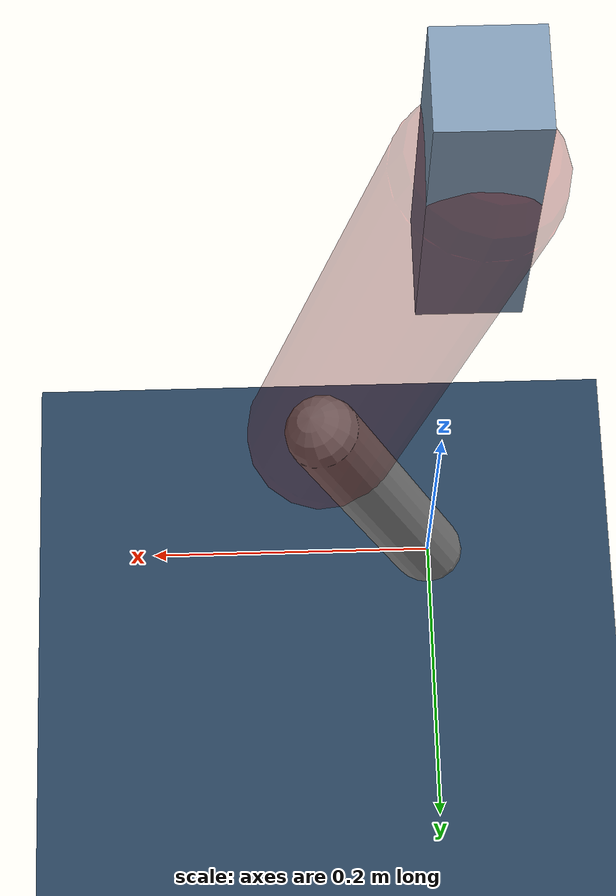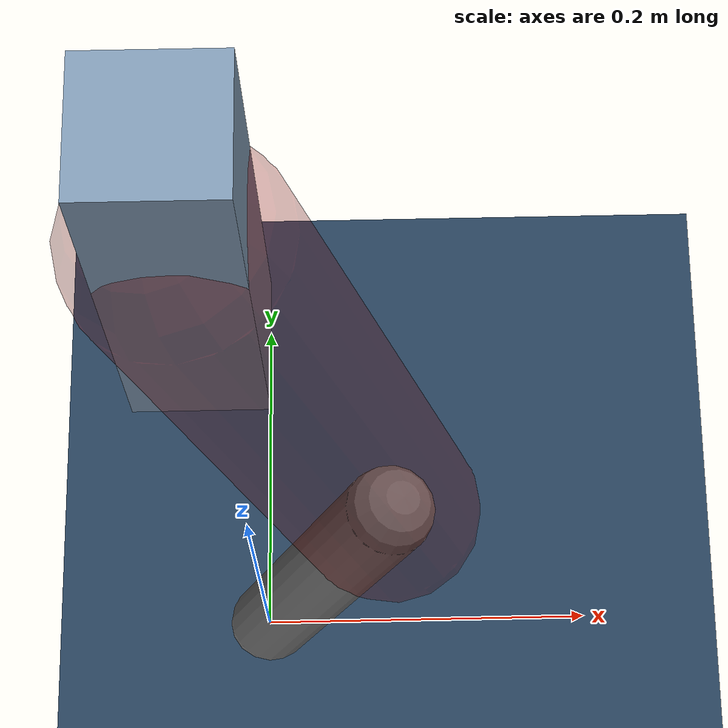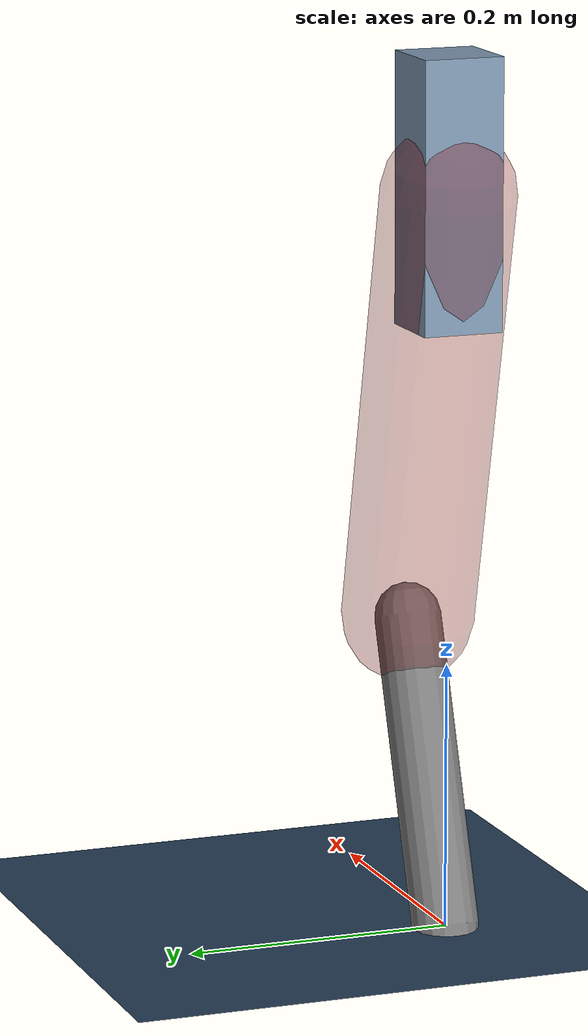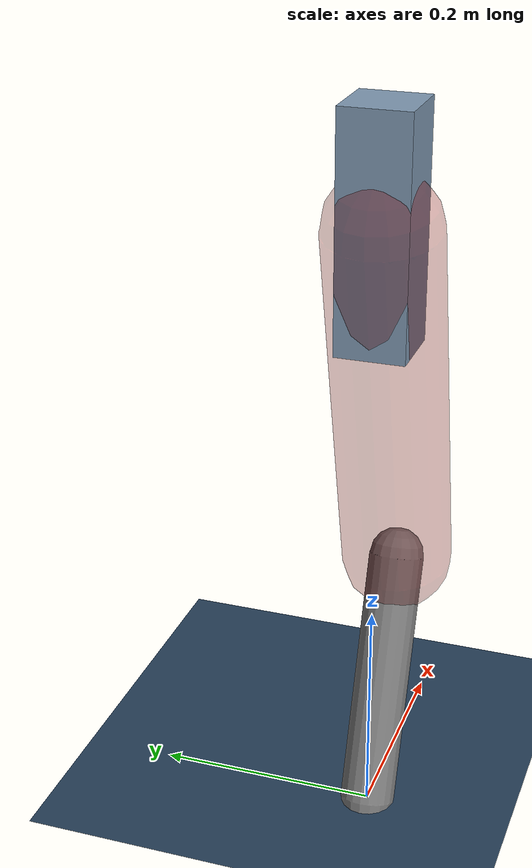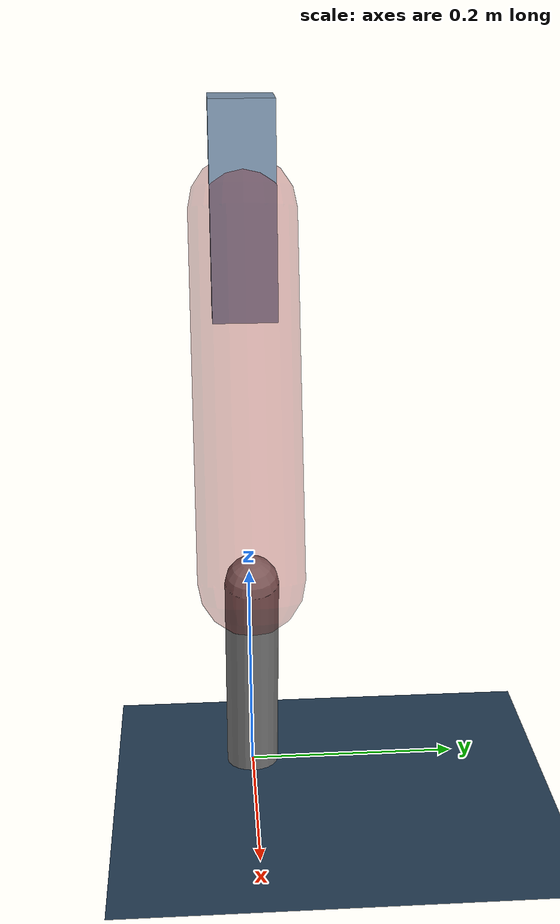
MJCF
<mujoco model="Hopper2D">
	<compiler inertiafromgeom="true" angle="radian" />
	<option timestep="0.001" integrator="implicit" cone="elliptic" solver="Newton" tolerance="1e-10" />

	<default>
		<geom contype="1" conaffinity="1" condim="3" friction="2 0.005 0.0001" solref="0.005 1" />
		<joint limited="true" damping="0.1" />
	</default>

	<asset>
		<texture name="skybox" type="skybox" builtin="gradient" rgb1=".4 .6 .8" rgb2="0 0 0" width="800" height="800" />
		<texture name="grid" type="2d" builtin="checker" rgb1=".1 .2 .3" rgb2=".2 .3 .4" width="300" height="300" mark="edge" markrgb=".2 .3 .4" />
		<material name="ground" texture="grid" texrepeat="1 1" texuniform="true" reflectance="0.1" />
		<material name="leg" rgba="0.5 0.6 0.7 1" />
	</asset>

	<worldbody>

		<geom name="floor" type="plane" size="5 5 0.25" material="ground" />

		<light directional="false" diffuse="0.8 0.8 0.8" specular="0.3 0.3 0.3" pos="0 0 2" dir="0 0 -1" />
		<light mode="targetbodycom" target="base" directional="false" diffuse="0.8 0.8 0.8" specular="0.3 0.3 0.3" pos="0 0 2" dir="0 0 -1" />

		<camera name="fixed" pos="0 -2 1" xyaxes="1 0 0 0 0 1" />
		<camera name="tracking" mode="trackcom" pos="0 -3 1" />

		<body name="root" pos="0 0 0.5519909967526754">
			<joint name="slide_x" type="slide" axis="1 0 0" range="-100 100" />
			<joint name="slide_z" type="slide" axis="0 0 1" range="0 10" />

			<body name="base" pos="0 0 0">
				<geom name="torso" type="box" size="0.03 0.03 0.1" mass="3.4159999999999995" material="leg" />

				<body name="link1" pos="0 0 0" euler="0 1.3378832414110189 0">
					<joint type="hinge" axis="0 -1 0" pos="0 0 0" name="hinge1" limited="true" range="-3.14 3.14" stiffness="0" damping="0.1" />
					<geom name="thigh" type="capsule" fromto="0 0 0 0.341769364885187 0 0" size="0.05" rgba="0.5 0 0 0.3" mass="1.1035542216785235" />

					<body name="link2" pos="0.341769364885187 0 0" euler="0 0.5779956886522797 0">
						<joint type="hinge" axis="0 -1 0" pos="0 0 0" name="hinge2" limited="true" range="-3.14 3.14" stiffness="0" damping="0.1" />
						<geom name="shank" type="capsule" fromto="0 0 0 0.23319761759796498 0 0" size="0.025" mass="0.42865809407837197" />

					</body>
				</body>
			</body>
		</body>
	</worldbody>

	<actuator>
		<motor name="torque1" joint="hinge1" ctrlrange="-41.56648675948311 41.56648675948311" ctrllimited="true" gear="1" />
		<motor name="torque2" joint="hinge2" ctrlrange="-157.0029320801643 157.0029320801643" ctrllimited="true" gear="1" />
	</actuator>
</mujoco>
